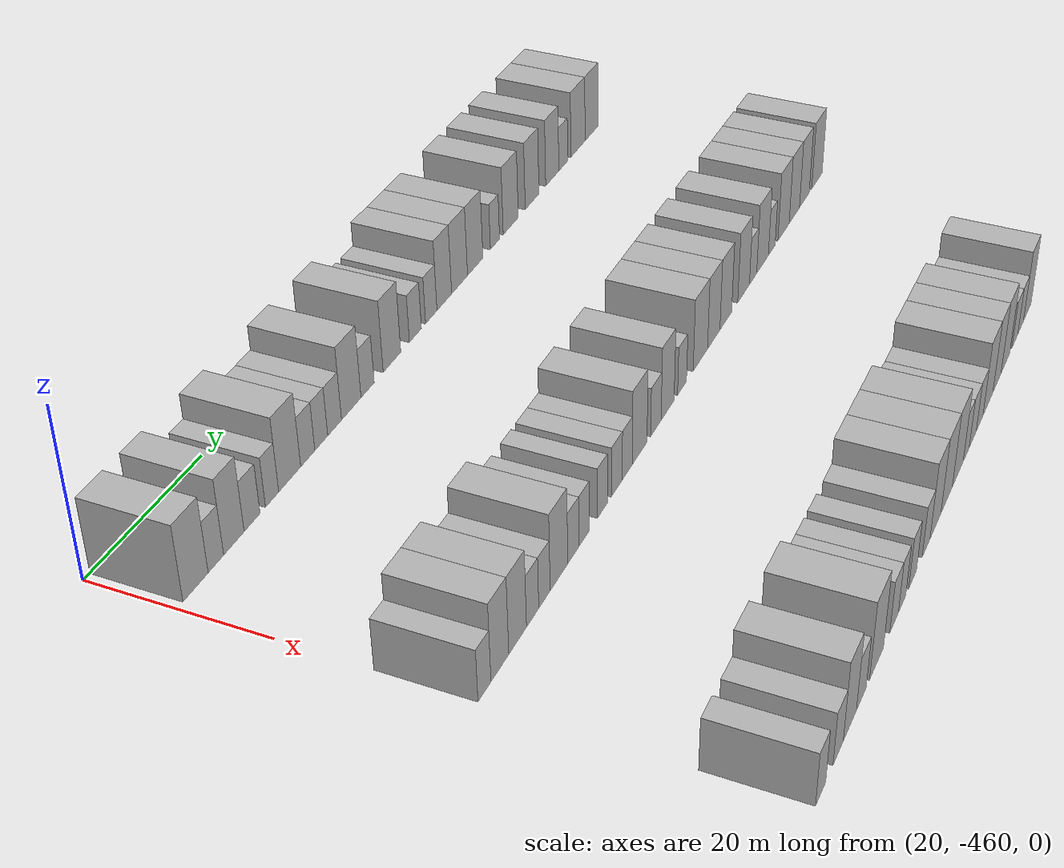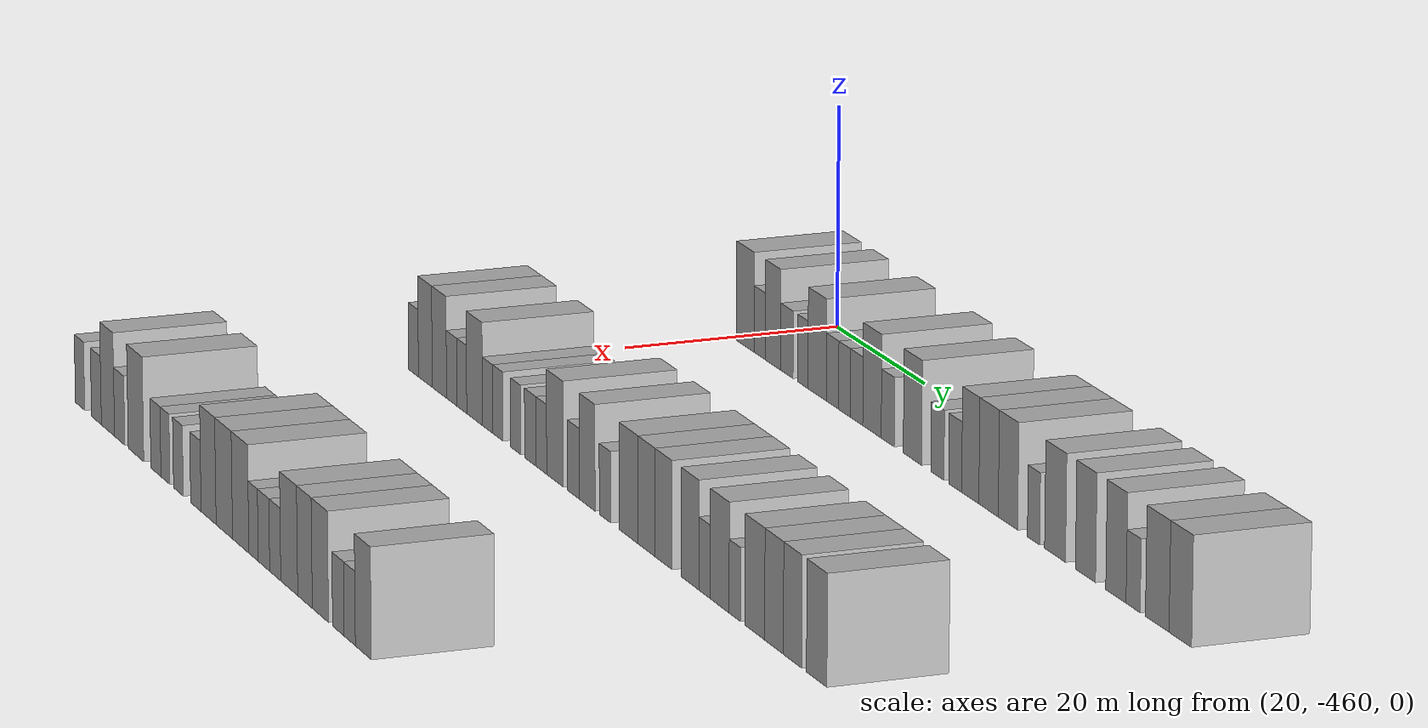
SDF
<sdf version="1.6">
 <world name="default">
  <model name="building_1">
   <static>1</static>
   <pose>25.0000 -456.8783 0 0.000000 0.000000 0.000000</pose>
   <link name="link">
    <pose>0 0 4.50 0 0 0</pose>
    <collision name="collision"><geometry><box><size>10.0000 4.2434 9.0000</size></box></geometry></collision>
    <visual name="visual">
     <cast_shadows>0</cast_shadows>
     <geometry><box><size>10.0000 4.2434 9.0000</size></box></geometry>
     <material>
      <script>
       <uri>model://HANNAS_wall/materials/scripts</uri>
       <uri>model://HANNAS_wall/materials/textures</uri>
       <name>vrc/HANNAS_wall</name>
      </script>
     </material>
    </visual>
   </link>
  </model>
  <model name="building_2">
   <static>1</static>
   <pose>25.0000 -453.4162 0 0.000000 0.000000 0.000000</pose>
   <link name="link">
    <pose>0 0 3.00 0 0 0</pose>
    <collision name="collision"><geometry><box><size>10.0000 2.6807 6.0000</size></box></geometry></collision>
    <visual name="visual">
     <cast_shadows>0</cast_shadows>
     <geometry><box><size>10.0000 2.6807 6.0000</size></box></geometry>
     <material>
      <script>
       <uri>model://HANNAS_wall/materials/scripts</uri>
       <uri>model://HANNAS_wall/materials/textures</uri>
       <name>vrc/HANNAS_wall</name>
      </script>
     </material>
    </visual>
   </link>
  </model>
  <model name="building_3">
   <static>1</static>
   <pose>25.0000 -450.2645 0 0.000000 0.000000 0.000000</pose>
   <link name="link">
    <pose>0 0 4.50 0 0 0</pose>
    <collision name="collision"><geometry><box><size>10.0000 3.6228 9.0000</size></box></geometry></collision>
    <visual name="visual">
     <cast_shadows>0</cast_shadows>
     <geometry><box><size>10.0000 3.6228 9.0000</size></box></geometry>
     <material>
      <script>
       <uri>model://HANNAS_wall/materials/scripts</uri>
       <uri>model://HANNAS_wall/materials/textures</uri>
       <name>vrc/HANNAS_wall</name>
      </script>
     </material>
    </visual>
   </link>
  </model>
  <model name="building_4">
   <static>1</static>
   <pose>25.0000 -446.9967 0 0.000000 0.000000 0.000000</pose>
   <link name="link">
    <pose>0 0 3.00 0 0 0</pose>
    <collision name="collision"><geometry><box><size>10.0000 2.9128 6.0000</size></box></geometry></collision>
    <visual name="visual">
     <cast_shadows>0</cast_shadows>
     <geometry><box><size>10.0000 2.9128 6.0000</size></box></geometry>
     <material>
      <script>
       <uri>model://HANNAS_wall/materials/scripts</uri>
       <uri>model://HANNAS_wall/materials/textures</uri>
       <name>vrc/HANNAS_wall</name>
      </script>
     </material>
    </visual>
   </link>
  </model>
  <model name="building_5">
   <static>1</static>
   <pose>25.0000 -443.2996 0 0.000000 0.000000 0.000000</pose>
   <link name="link">
    <pose>0 0 3.00 0 0 0</pose>
    <collision name="collision"><geometry><box><size>10.0000 2.4815 6.0000</size></box></geometry></collision>
    <visual name="visual">
     <cast_shadows>0</cast_shadows>
     <geometry><box><size>10.0000 2.4815 6.0000</size></box></geometry>
     <material>
      <script>
       <uri>model://HANNAS_wall/materials/scripts</uri>
       <uri>model://HANNAS_wall/materials/textures</uri>
       <name>vrc/HANNAS_wall</name>
      </script>
     </material>
    </visual>
   </link>
  </model>
  <model name="building_6">
   <static>1</static>
   <pose>25.0000 -439.9351 0 0.000000 0.000000 0.000000</pose>
   <link name="link">
    <pose>0 0 4.50 0 0 0</pose>
    <collision name="collision"><geometry><box><size>10.0000 4.2474 9.0000</size></box></geometry></collision>
    <visual name="visual">
     <cast_shadows>0</cast_shadows>
     <geometry><box><size>10.0000 4.2474 9.0000</size></box></geometry>
     <material>
      <script>
       <uri>model://HANNAS_wall/materials/scripts</uri>
       <uri>model://HANNAS_wall/materials/textures</uri>
       <name>vrc/HANNAS_wall</name>
      </script>
     </material>
    </visual>
   </link>
  </model>
  <model name="building_7">
   <static>1</static>
   <pose>25.0000 -436.4118 0 0.000000 0.000000 0.000000</pose>
   <link name="link">
    <pose>0 0 3.00 0 0 0</pose>
    <collision name="collision"><geometry><box><size>10.0000 2.7993 6.0000</size></box></geometry></collision>
    <visual name="visual">
     <cast_shadows>0</cast_shadows>
     <geometry><box><size>10.0000 2.7993 6.0000</size></box></geometry>
     <material>
      <script>
       <uri>model://HANNAS_wall/materials/scripts</uri>
       <uri>model://HANNAS_wall/materials/textures</uri>
       <name>vrc/HANNAS_wall</name>
      </script>
     </material>
    </visual>
   </link>
  </model>
  <model name="building_8">
   <static>1</static>
   <pose>25.0000 -433.7021 0 0.000000 0.000000 0.000000</pose>
   <link name="link">
    <pose>0 0 3.00 0 0 0</pose>
    <collision name="collision"><geometry><box><size>10.0000 2.6202 6.0000</size></box></geometry></collision>
    <visual name="visual">
     <cast_shadows>0</cast_shadows>
     <geometry><box><size>10.0000 2.6202 6.0000</size></box></geometry>
     <material>
      <script>
       <uri>model://HANNAS_wall/materials/scripts</uri>
       <uri>model://HANNAS_wall/materials/textures</uri>
       <name>vrc/HANNAS_wall</name>
      </script>
     </material>
    </visual>
   </link>
  </model>
  <model name="building_9">
   <static>1</static>
   <pose>25.0000 -430.9677 0 0.000000 0.000000 0.000000</pose>
   <link name="link">
    <pose>0 0 3.00 0 0 0</pose>
    <collision name="collision"><geometry><box><size>10.0000 2.8485 6.0000</size></box></geometry></collision>
    <visual name="visual">
     <cast_shadows>0</cast_shadows>
     <geometry><box><size>10.0000 2.8485 6.0000</size></box></geometry>
     <material>
      <script>
       <uri>model://HANNAS_wall/materials/scripts</uri>
       <uri>model://HANNAS_wall/materials/textures</uri>
       <name>vrc/HANNAS_wall</name>
      </script>
     </material>
    </visual>
   </link>
  </model>
  <model name="building_10">
   <static>1</static>
   <pose>25.0000 -427.4785 0 0.000000 0.000000 0.000000</pose>
   <link name="link">
    <pose>0 0 4.50 0 0 0</pose>
    <collision name="collision"><geometry><box><size>10.0000 4.1300 9.0000</size></box></geometry></collision>
    <visual name="visual">
     <cast_shadows>0</cast_shadows>
     <geometry><box><size>10.0000 4.1300 9.0000</size></box></geometry>
     <material>
      <script>
       <uri>model://HANNAS_wall/materials/scripts</uri>
       <uri>model://HANNAS_wall/materials/textures</uri>
       <name>vrc/HANNAS_wall</name>
      </script>
     </material>
    </visual>
   </link>
  </model>
  <model name="building_11">
   <static>1</static>
   <pose>25.0000 -423.9754 0 0.000000 0.000000 0.000000</pose>
   <link name="link">
    <pose>0 0 3.00 0 0 0</pose>
    <collision name="collision"><geometry><box><size>10.0000 2.8760 6.0000</size></box></geometry></collision>
    <visual name="visual">
     <cast_shadows>0</cast_shadows>
     <geometry><box><size>10.0000 2.8760 6.0000</size></box></geometry>
     <material>
      <script>
       <uri>model://HANNAS_wall/materials/scripts</uri>
       <uri>model://HANNAS_wall/materials/textures</uri>
       <name>vrc/HANNAS_wall</name>
      </script>
     </material>
    </visual>
   </link>
  </model>
  <model name="building_12">
   <static>1</static>
   <pose>25.0000 -418.5419 0 0.000000 0.000000 0.000000</pose>
   <link name="link">
    <pose>0 0 4.50 0 0 0</pose>
    <collision name="collision"><geometry><box><size>10.0000 3.9910 9.0000</size></box></geometry></collision>
    <visual name="visual">
     <cast_shadows>0</cast_shadows>
     <geometry><box><size>10.0000 3.9910 9.0000</size></box></geometry>
     <material>
      <script>
       <uri>model://HANNAS_wall/materials/scripts</uri>
       <uri>model://HANNAS_wall/materials/textures</uri>
       <name>vrc/HANNAS_wall</name>
      </script>
     </material>
    </visual>
   </link>
  </model>
  <model name="building_13">
   <static>1</static>
   <pose>25.0000 -413.1320 0 0.000000 0.000000 0.000000</pose>
   <link name="link">
    <pose>0 0 3.00 0 0 0</pose>
    <collision name="collision"><geometry><box><size>10.0000 2.8289 6.0000</size></box></geometry></collision>
    <visual name="visual">
     <cast_shadows>0</cast_shadows>
     <geometry><box><size>10.0000 2.8289 6.0000</size></box></geometry>
     <material>
      <script>
       <uri>model://HANNAS_wall/materials/scripts</uri>
       <uri>model://HANNAS_wall/materials/textures</uri>
       <name>vrc/HANNAS_wall</name>
      </script>
     </material>
    </visual>
   </link>
  </model>
  <model name="building_14">
   <static>1</static>
   <pose>25.0000 -409.3361 0 0.000000 0.000000 0.000000</pose>
   <link name="link">
    <pose>0 0 3.00 0 0 0</pose>
    <collision name="collision"><geometry><box><size>10.0000 2.7627 6.0000</size></box></geometry></collision>
    <visual name="visual">
     <cast_shadows>0</cast_shadows>
     <geometry><box><size>10.0000 2.7627 6.0000</size></box></geometry>
     <material>
      <script>
       <uri>model://HANNAS_wall/materials/scripts</uri>
       <uri>model://HANNAS_wall/materials/textures</uri>
       <name>vrc/HANNAS_wall</name>
      </script>
     </material>
    </visual>
   </link>
  </model>
  <model name="building_15">
   <static>1</static>
   <pose>25.0000 -406.1360 0 0.000000 0.000000 0.000000</pose>
   <link name="link">
    <pose>0 0 4.50 0 0 0</pose>
    <collision name="collision"><geometry><box><size>10.0000 3.6375 9.0000</size></box></geometry></collision>
    <visual name="visual">
     <cast_shadows>0</cast_shadows>
     <geometry><box><size>10.0000 3.6375 9.0000</size></box></geometry>
     <material>
      <script>
       <uri>model://HANNAS_wall/materials/scripts</uri>
       <uri>model://HANNAS_wall/materials/textures</uri>
       <name>vrc/HANNAS_wall</name>
      </script>
     </material>
    </visual>
   </link>
  </model>
  <model name="building_16">
   <static>1</static>
   <pose>25.0000 -402.2906 0 0.000000 0.000000 0.000000</pose>
   <link name="link">
    <pose>0 0 4.50 0 0 0</pose>
    <collision name="collision"><geometry><box><size>10.0000 4.0534 9.0000</size></box></geometry></collision>
    <visual name="visual">
     <cast_shadows>0</cast_shadows>
     <geometry><box><size>10.0000 4.0534 9.0000</size></box></geometry>
     <material>
      <script>
       <uri>model://HANNAS_wall/materials/scripts</uri>
       <uri>model://HANNAS_wall/materials/textures</uri>
       <name>vrc/HANNAS_wall</name>
      </script>
     </material>
    </visual>
   </link>
  </model>
  <model name="building_17">
   <static>1</static>
   <pose>25.0000 -398.2564 0 0.000000 0.000000 0.000000</pose>
   <link name="link">
    <pose>0 0 4.50 0 0 0</pose>
    <collision name="collision"><geometry><box><size>10.0000 4.0150 9.0000</size></box></geometry></collision>
    <visual name="visual">
     <cast_shadows>0</cast_shadows>
     <geometry><box><size>10.0000 4.0150 9.0000</size></box></geometry>
     <material>
      <script>
       <uri>model://HANNAS_wall/materials/scripts</uri>
       <uri>model://HANNAS_wall/materials/textures</uri>
       <name>vrc/HANNAS_wall</name>
      </script>
     </material>
    </visual>
   </link>
  </model>
  <model name="building_18">
   <static>1</static>
   <pose>25.0000 -393.0043 0 0.000000 0.000000 0.000000</pose>
   <link name="link">
    <pose>0 0 3.00 0 0 0</pose>
    <collision name="collision"><geometry><box><size>10.0000 2.4893 6.0000</size></box></geometry></collision>
    <visual name="visual">
     <cast_shadows>0</cast_shadows>
     <geometry><box><size>10.0000 2.4893 6.0000</size></box></geometry>
     <material>
      <script>
       <uri>model://HANNAS_wall/materials/scripts</uri>
       <uri>model://HANNAS_wall/materials/textures</uri>
       <name>vrc/HANNAS_wall</name>
      </script>
     </material>
    </visual>
   </link>
  </model>
  <model name="building_19">
   <static>1</static>
   <pose>25.0000 -388.6606 0 0.000000 0.000000 0.000000</pose>
   <link name="link">
    <pose>0 0 4.50 0 0 0</pose>
    <collision name="collision"><geometry><box><size>10.0000 4.1980 9.0000</size></box></geometry></collision>
    <visual name="visual">
     <cast_shadows>0</cast_shadows>
     <geometry><box><size>10.0000 4.1980 9.0000</size></box></geometry>
     <material>
      <script>
       <uri>model://HANNAS_wall/materials/scripts</uri>
       <uri>model://HANNAS_wall/materials/textures</uri>
       <name>vrc/HANNAS_wall</name>
      </script>
     </material>
    </visual>
   </link>
  </model>
  <model name="building_20">
   <static>1</static>
   <pose>25.0000 -382.5770 0 0.000000 0.000000 0.000000</pose>
   <link name="link">
    <pose>0 0 4.50 0 0 0</pose>
    <collision name="collision"><geometry><box><size>10.0000 3.9693 9.0000</size></box></geometry></collision>
    <visual name="visual">
     <cast_shadows>0</cast_shadows>
     <geometry><box><size>10.0000 3.9693 9.0000</size></box></geometry>
     <material>
      <script>
       <uri>model://HANNAS_wall/materials/scripts</uri>
       <uri>model://HANNAS_wall/materials/textures</uri>
       <name>vrc/HANNAS_wall</name>
      </script>
     </material>
    </visual>
   </link>
  </model>
  <model name="building_21">
   <static>1</static>
   <pose>25.0000 -376.6171 0 0.000000 0.000000 0.000000</pose>
   <link name="link">
    <pose>0 0 4.50 0 0 0</pose>
    <collision name="collision"><geometry><box><size>10.0000 3.9505 9.0000</size></box></geometry></collision>
    <visual name="visual">
     <cast_shadows>0</cast_shadows>
     <geometry><box><size>10.0000 3.9505 9.0000</size></box></geometry>
     <material>
      <script>
       <uri>model://HANNAS_wall/materials/scripts</uri>
       <uri>model://HANNAS_wall/materials/textures</uri>
       <name>vrc/HANNAS_wall</name>
      </script>
     </material>
    </visual>
   </link>
  </model>
  <model name="building_22">
   <static>1</static>
   <pose>25.0000 -373.2767 0 0.000000 0.000000 0.000000</pose>
   <link name="link">
    <pose>0 0 3.00 0 0 0</pose>
    <collision name="collision"><geometry><box><size>10.0000 2.7302 6.0000</size></box></geometry></collision>
    <visual name="visual">
     <cast_shadows>0</cast_shadows>
     <geometry><box><size>10.0000 2.7302 6.0000</size></box></geometry>
     <material>
      <script>
       <uri>model://HANNAS_wall/materials/scripts</uri>
       <uri>model://HANNAS_wall/materials/textures</uri>
       <name>vrc/HANNAS_wall</name>
      </script>
     </material>
    </visual>
   </link>
  </model>
  <model name="building_23">
   <static>1</static>
   <pose>25.0000 -368.6682 0 0.000000 0.000000 0.000000</pose>
   <link name="link">
    <pose>0 0 4.50 0 0 0</pose>
    <collision name="collision"><geometry><box><size>10.0000 4.4869 9.0000</size></box></geometry></collision>
    <visual name="visual">
     <cast_shadows>0</cast_shadows>
     <geometry><box><size>10.0000 4.4869 9.0000</size></box></geometry>
     <material>
      <script>
       <uri>model://HANNAS_wall/materials/scripts</uri>
       <uri>model://HANNAS_wall/materials/textures</uri>
       <name>vrc/HANNAS_wall</name>
      </script>
     </material>
    </visual>
   </link>
  </model>
  <model name="building_24">
   <static>1</static>
   <pose>25.0000 -364.3045 0 0.000000 0.000000 0.000000</pose>
   <link name="link">
    <pose>0 0 4.50 0 0 0</pose>
    <collision name="collision"><geometry><box><size>10.0000 4.2405 9.0000</size></box></geometry></collision>
    <visual name="visual">
     <cast_shadows>0</cast_shadows>
     <geometry><box><size>10.0000 4.2405 9.0000</size></box></geometry>
     <material>
      <script>
       <uri>model://HANNAS_wall/materials/scripts</uri>
       <uri>model://HANNAS_wall/materials/textures</uri>
       <name>vrc/HANNAS_wall</name>
      </script>
     </material>
    </visual>
   </link>
  </model>
  <model name="building_215">
   <static>1</static>
   <pose>55.0000 -458.7110 0 0.000000 0.000000 0.000000</pose>
   <link name="link">
    <pose>0 0 3.00 0 0 0</pose>
    <collision name="collision"><geometry><box><size>10.0000 2.5780 6.0000</size></box></geometry></collision>
    <visual name="visual">
     <cast_shadows>0</cast_shadows>
     <geometry><box><size>10.0000 2.5780 6.0000</size></box></geometry>
     <material>
      <script>
       <uri>model://HANNAS_wall/materials/scripts</uri>
       <uri>model://HANNAS_wall/materials/textures</uri>
       <name>vrc/HANNAS_wall</name>
      </script>
     </material>
    </visual>
   </link>
  </model>
  <model name="building_216">
   <static>1</static>
   <pose>55.0000 -455.6035 0 0.000000 0.000000 0.000000</pose>
   <link name="link">
    <pose>0 0 4.50 0 0 0</pose>
    <collision name="collision"><geometry><box><size>10.0000 3.6370 9.0000</size></box></geometry></collision>
    <visual name="visual">
     <cast_shadows>0</cast_shadows>
     <geometry><box><size>10.0000 3.6370 9.0000</size></box></geometry>
     <material>
      <script>
       <uri>model://HANNAS_wall/materials/scripts</uri>
       <uri>model://HANNAS_wall/materials/textures</uri>
       <name>vrc/HANNAS_wall</name>
      </script>
     </material>
    </visual>
   </link>
  </model>
  <model name="building_217">
   <static>1</static>
   <pose>55.0000 -451.9190 0 0.000000 0.000000 0.000000</pose>
   <link name="link">
    <pose>0 0 4.50 0 0 0</pose>
    <collision name="collision"><geometry><box><size>10.0000 3.7319 9.0000</size></box></geometry></collision>
    <visual name="visual">
     <cast_shadows>0</cast_shadows>
     <geometry><box><size>10.0000 3.7319 9.0000</size></box></geometry>
     <material>
      <script>
       <uri>model://HANNAS_wall/materials/scripts</uri>
       <uri>model://HANNAS_wall/materials/textures</uri>
       <name>vrc/HANNAS_wall</name>
      </script>
     </material>
    </visual>
   </link>
  </model>
  <model name="building_218">
   <static>1</static>
   <pose>55.0000 -448.7232 0 0.000000 0.000000 0.000000</pose>
   <link name="link">
    <pose>0 0 3.00 0 0 0</pose>
    <collision name="collision"><geometry><box><size>10.0000 2.6597 6.0000</size></box></geometry></collision>
    <visual name="visual">
     <cast_shadows>0</cast_shadows>
     <geometry><box><size>10.0000 2.6597 6.0000</size></box></geometry>
     <material>
      <script>
       <uri>model://HANNAS_wall/materials/scripts</uri>
       <uri>model://HANNAS_wall/materials/textures</uri>
       <name>vrc/HANNAS_wall</name>
      </script>
     </material>
    </visual>
   </link>
  </model>
  <model name="building_219">
   <static>1</static>
   <pose>55.0000 -446.1282 0 0.000000 0.000000 0.000000</pose>
   <link name="link">
    <pose>0 0 3.00 0 0 0</pose>
    <collision name="collision"><geometry><box><size>10.0000 2.5302 6.0000</size></box></geometry></collision>
    <visual name="visual">
     <cast_shadows>0</cast_shadows>
     <geometry><box><size>10.0000 2.5302 6.0000</size></box></geometry>
     <material>
      <script>
       <uri>model://HANNAS_wall/materials/scripts</uri>
       <uri>model://HANNAS_wall/materials/textures</uri>
       <name>vrc/HANNAS_wall</name>
      </script>
     </material>
    </visual>
   </link>
  </model>
  <model name="building_220">
   <static>1</static>
   <pose>55.0000 -442.8628 0 0.000000 0.000000 0.000000</pose>
   <link name="link">
    <pose>0 0 4.50 0 0 0</pose>
    <collision name="collision"><geometry><box><size>10.0000 4.0006 9.0000</size></box></geometry></collision>
    <visual name="visual">
     <cast_shadows>0</cast_shadows>
     <geometry><box><size>10.0000 4.0006 9.0000</size></box></geometry>
     <material>
      <script>
       <uri>model://HANNAS_wall/materials/scripts</uri>
       <uri>model://HANNAS_wall/materials/textures</uri>
       <name>vrc/HANNAS_wall</name>
      </script>
     </material>
    </visual>
   </link>
  </model>
  <model name="building_221">
   <static>1</static>
   <pose>55.0000 -439.5380 0 0.000000 0.000000 0.000000</pose>
   <link name="link">
    <pose>0 0 3.00 0 0 0</pose>
    <collision name="collision"><geometry><box><size>10.0000 2.6491 6.0000</size></box></geometry></collision>
    <visual name="visual">
     <cast_shadows>0</cast_shadows>
     <geometry><box><size>10.0000 2.6491 6.0000</size></box></geometry>
     <material>
      <script>
       <uri>model://HANNAS_wall/materials/scripts</uri>
       <uri>model://HANNAS_wall/materials/textures</uri>
       <name>vrc/HANNAS_wall</name>
      </script>
     </material>
    </visual>
   </link>
  </model>
  <model name="building_222">
   <static>1</static>
   <pose>55.0000 -436.9843 0 0.000000 0.000000 0.000000</pose>
   <link name="link">
    <pose>0 0 3.00 0 0 0</pose>
    <collision name="collision"><geometry><box><size>10.0000 2.4582 6.0000</size></box></geometry></collision>
    <visual name="visual">
     <cast_shadows>0</cast_shadows>
     <geometry><box><size>10.0000 2.4582 6.0000</size></box></geometry>
     <material>
      <script>
       <uri>model://HANNAS_wall/materials/scripts</uri>
       <uri>model://HANNAS_wall/materials/textures</uri>
       <name>vrc/HANNAS_wall</name>
      </script>
     </material>
    </visual>
   </link>
  </model>
  <model name="building_223">
   <static>1</static>
   <pose>55.0000 -432.5387 0 0.000000 0.000000 0.000000</pose>
   <link name="link">
    <pose>0 0 3.00 0 0 0</pose>
    <collision name="collision"><geometry><box><size>10.0000 2.4329 6.0000</size></box></geometry></collision>
    <visual name="visual">
     <cast_shadows>0</cast_shadows>
     <geometry><box><size>10.0000 2.4329 6.0000</size></box></geometry>
     <material>
      <script>
       <uri>model://HANNAS_wall/materials/scripts</uri>
       <uri>model://HANNAS_wall/materials/textures</uri>
       <name>vrc/HANNAS_wall</name>
      </script>
     </material>
    </visual>
   </link>
  </model>
  <model name="building_224">
   <static>1</static>
   <pose>55.0000 -428.9319 0 0.000000 0.000000 0.000000</pose>
   <link name="link">
    <pose>0 0 3.00 0 0 0</pose>
    <collision name="collision"><geometry><box><size>10.0000 2.7806 6.0000</size></box></geometry></collision>
    <visual name="visual">
     <cast_shadows>0</cast_shadows>
     <geometry><box><size>10.0000 2.7806 6.0000</size></box></geometry>
     <material>
      <script>
       <uri>model://HANNAS_wall/materials/scripts</uri>
       <uri>model://HANNAS_wall/materials/textures</uri>
       <name>vrc/HANNAS_wall</name>
      </script>
     </material>
    </visual>
   </link>
  </model>
  <model name="building_225">
   <static>1</static>
   <pose>55.0000 -426.2436 0 0.000000 0.000000 0.000000</pose>
   <link name="link">
    <pose>0 0 3.00 0 0 0</pose>
    <collision name="collision"><geometry><box><size>10.0000 2.5960 6.0000</size></box></geometry></collision>
    <visual name="visual">
     <cast_shadows>0</cast_shadows>
     <geometry><box><size>10.0000 2.5960 6.0000</size></box></geometry>
     <material>
      <script>
       <uri>model://HANNAS_wall/materials/scripts</uri>
       <uri>model://HANNAS_wall/materials/textures</uri>
       <name>vrc/HANNAS_wall</name>
      </script>
     </material>
    </visual>
   </link>
  </model>
  <model name="building_226">
   <static>1</static>
   <pose>55.0000 -422.9632 0 0.000000 0.000000 0.000000</pose>
   <link name="link">
    <pose>0 0 4.50 0 0 0</pose>
    <collision name="collision"><geometry><box><size>10.0000 3.9649 9.0000</size></box></geometry></collision>
    <visual name="visual">
     <cast_shadows>0</cast_shadows>
     <geometry><box><size>10.0000 3.9649 9.0000</size></box></geometry>
     <material>
      <script>
       <uri>model://HANNAS_wall/materials/scripts</uri>
       <uri>model://HANNAS_wall/materials/textures</uri>
       <name>vrc/HANNAS_wall</name>
      </script>
     </material>
    </visual>
   </link>
  </model>
  <model name="building_227">
   <static>1</static>
   <pose>55.0000 -418.5348 0 0.000000 0.000000 0.000000</pose>
   <link name="link">
    <pose>0 0 3.00 0 0 0</pose>
    <collision name="collision"><geometry><box><size>10.0000 2.8920 6.0000</size></box></geometry></collision>
    <visual name="visual">
     <cast_shadows>0</cast_shadows>
     <geometry><box><size>10.0000 2.8920 6.0000</size></box></geometry>
     <material>
      <script>
       <uri>model://HANNAS_wall/materials/scripts</uri>
       <uri>model://HANNAS_wall/materials/textures</uri>
       <name>vrc/HANNAS_wall</name>
      </script>
     </material>
    </visual>
   </link>
  </model>
  <model name="building_228">
   <static>1</static>
   <pose>55.0000 -415.2346 0 0.000000 0.000000 0.000000</pose>
   <link name="link">
    <pose>0 0 4.50 0 0 0</pose>
    <collision name="collision"><geometry><box><size>10.0000 3.7083 9.0000</size></box></geometry></collision>
    <visual name="visual">
     <cast_shadows>0</cast_shadows>
     <geometry><box><size>10.0000 3.7083 9.0000</size></box></geometry>
     <material>
      <script>
       <uri>model://HANNAS_wall/materials/scripts</uri>
       <uri>model://HANNAS_wall/materials/textures</uri>
       <name>vrc/HANNAS_wall</name>
      </script>
     </material>
    </visual>
   </link>
  </model>
  <model name="building_229">
   <static>1</static>
   <pose>55.0000 -411.0763 0 0.000000 0.000000 0.000000</pose>
   <link name="link">
    <pose>0 0 3.00 0 0 0</pose>
    <collision name="collision"><geometry><box><size>10.0000 2.6084 6.0000</size></box></geometry></collision>
    <visual name="visual">
     <cast_shadows>0</cast_shadows>
     <geometry><box><size>10.0000 2.6084 6.0000</size></box></geometry>
     <material>
      <script>
       <uri>model://HANNAS_wall/materials/scripts</uri>
       <uri>model://HANNAS_wall/materials/textures</uri>
       <name>vrc/HANNAS_wall</name>
      </script>
     </material>
    </visual>
   </link>
  </model>
  <model name="building_230">
   <static>1</static>
   <pose>55.0000 -405.5846 0 0.000000 0.000000 0.000000</pose>
   <link name="link">
    <pose>0 0 4.50 0 0 0</pose>
    <collision name="collision"><geometry><box><size>10.0000 4.3749 9.0000</size></box></geometry></collision>
    <visual name="visual">
     <cast_shadows>0</cast_shadows>
     <geometry><box><size>10.0000 4.3749 9.0000</size></box></geometry>
     <material>
      <script>
       <uri>model://HANNAS_wall/materials/scripts</uri>
       <uri>model://HANNAS_wall/materials/textures</uri>
       <name>vrc/HANNAS_wall</name>
      </script>
     </material>
    </visual>
   </link>
  </model>
  <model name="building_231">
   <static>1</static>
   <pose>55.0000 -401.4503 0 0.000000 0.000000 0.000000</pose>
   <link name="link">
    <pose>0 0 4.50 0 0 0</pose>
    <collision name="collision"><geometry><box><size>10.0000 3.8938 9.0000</size></box></geometry></collision>
    <visual name="visual">
     <cast_shadows>0</cast_shadows>
     <geometry><box><size>10.0000 3.8938 9.0000</size></box></geometry>
     <material>
      <script>
       <uri>model://HANNAS_wall/materials/scripts</uri>
       <uri>model://HANNAS_wall/materials/textures</uri>
       <name>vrc/HANNAS_wall</name>
      </script>
     </material>
    </visual>
   </link>
  </model>
  <model name="building_232">
   <static>1</static>
   <pose>55.0000 -397.6025 0 0.000000 0.000000 0.000000</pose>
   <link name="link">
    <pose>0 0 4.50 0 0 0</pose>
    <collision name="collision"><geometry><box><size>10.0000 3.8018 9.0000</size></box></geometry></collision>
    <visual name="visual">
     <cast_shadows>0</cast_shadows>
     <geometry><box><size>10.0000 3.8018 9.0000</size></box></geometry>
     <material>
      <script>
       <uri>model://HANNAS_wall/materials/scripts</uri>
       <uri>model://HANNAS_wall/materials/textures</uri>
       <name>vrc/HANNAS_wall</name>
      </script>
     </material>
    </visual>
   </link>
  </model>
  <model name="building_233">
   <static>1</static>
   <pose>55.0000 -391.7390 0 0.000000 0.000000 0.000000</pose>
   <link name="link">
    <pose>0 0 4.50 0 0 0</pose>
    <collision name="collision"><geometry><box><size>10.0000 3.9252 9.0000</size></box></geometry></collision>
    <visual name="visual">
     <cast_shadows>0</cast_shadows>
     <geometry><box><size>10.0000 3.9252 9.0000</size></box></geometry>
     <material>
      <script>
       <uri>model://HANNAS_wall/materials/scripts</uri>
       <uri>model://HANNAS_wall/materials/textures</uri>
       <name>vrc/HANNAS_wall</name>
      </script>
     </material>
    </visual>
   </link>
  </model>
  <model name="building_234">
   <static>1</static>
   <pose>55.0000 -388.5229 0 0.000000 0.000000 0.000000</pose>
   <link name="link">
    <pose>0 0 3.00 0 0 0</pose>
    <collision name="collision"><geometry><box><size>10.0000 2.5069 6.0000</size></box></geometry></collision>
    <visual name="visual">
     <cast_shadows>0</cast_shadows>
     <geometry><box><size>10.0000 2.5069 6.0000</size></box></geometry>
     <material>
      <script>
       <uri>model://HANNAS_wall/materials/scripts</uri>
       <uri>model://HANNAS_wall/materials/textures</uri>
       <name>vrc/HANNAS_wall</name>
      </script>
     </material>
    </visual>
   </link>
  </model>
  <model name="building_235">
   <static>1</static>
   <pose>55.0000 -385.2077 0 0.000000 0.000000 0.000000</pose>
   <link name="link">
    <pose>0 0 4.50 0 0 0</pose>
    <collision name="collision"><geometry><box><size>10.0000 4.1236 9.0000</size></box></geometry></collision>
    <visual name="visual">
     <cast_shadows>0</cast_shadows>
     <geometry><box><size>10.0000 4.1236 9.0000</size></box></geometry>
     <material>
      <script>
       <uri>model://HANNAS_wall/materials/scripts</uri>
       <uri>model://HANNAS_wall/materials/textures</uri>
       <name>vrc/HANNAS_wall</name>
      </script>
     </material>
    </visual>
   </link>
  </model>
  <model name="building_236">
   <static>1</static>
   <pose>55.0000 -381.9351 0 0.000000 0.000000 0.000000</pose>
   <link name="link">
    <pose>0 0 3.00 0 0 0</pose>
    <collision name="collision"><geometry><box><size>10.0000 2.4216 6.0000</size></box></geometry></collision>
    <visual name="visual">
     <cast_shadows>0</cast_shadows>
     <geometry><box><size>10.0000 2.4216 6.0000</size></box></geometry>
     <material>
      <script>
       <uri>model://HANNAS_wall/materials/scripts</uri>
       <uri>model://HANNAS_wall/materials/textures</uri>
       <name>vrc/HANNAS_wall</name>
      </script>
     </material>
    </visual>
   </link>
  </model>
  <model name="building_237">
   <static>1</static>
   <pose>55.0000 -377.6320 0 0.000000 0.000000 0.000000</pose>
   <link name="link">
    <pose>0 0 4.50 0 0 0</pose>
    <collision name="collision"><geometry><box><size>10.0000 4.1847 9.0000</size></box></geometry></collision>
    <visual name="visual">
     <cast_shadows>0</cast_shadows>
     <geometry><box><size>10.0000 4.1847 9.0000</size></box></geometry>
     <material>
      <script>
       <uri>model://HANNAS_wall/materials/scripts</uri>
       <uri>model://HANNAS_wall/materials/textures</uri>
       <name>vrc/HANNAS_wall</name>
      </script>
     </material>
    </visual>
   </link>
  </model>
  <model name="building_238">
   <static>1</static>
   <pose>55.0000 -373.5773 0 0.000000 0.000000 0.000000</pose>
   <link name="link">
    <pose>0 0 4.50 0 0 0</pose>
    <collision name="collision"><geometry><box><size>10.0000 3.9247 9.0000</size></box></geometry></collision>
    <visual name="visual">
     <cast_shadows>0</cast_shadows>
     <geometry><box><size>10.0000 3.9247 9.0000</size></box></geometry>
     <material>
      <script>
       <uri>model://HANNAS_wall/materials/scripts</uri>
       <uri>model://HANNAS_wall/materials/textures</uri>
       <name>vrc/HANNAS_wall</name>
      </script>
     </material>
    </visual>
   </link>
  </model>
  <model name="building_239">
   <static>1</static>
   <pose>55.0000 -369.7118 0 0.000000 0.000000 0.000000</pose>
   <link name="link">
    <pose>0 0 4.50 0 0 0</pose>
    <collision name="collision"><geometry><box><size>10.0000 3.8063 9.0000</size></box></geometry></collision>
    <visual name="visual">
     <cast_shadows>0</cast_shadows>
     <geometry><box><size>10.0000 3.8063 9.0000</size></box></geometry>
     <material>
      <script>
       <uri>model://HANNAS_wall/materials/scripts</uri>
       <uri>model://HANNAS_wall/materials/textures</uri>
       <name>vrc/HANNAS_wall</name>
      </script>
     </material>
    </visual>
   </link>
  </model>
  <model name="building_240">
   <static>1</static>
   <pose>55.0000 -364.7172 0 0.000000 0.000000 0.000000</pose>
   <link name="link">
    <pose>0 0 4.50 0 0 0</pose>
    <collision name="collision"><geometry><box><size>10.0000 4.1829 9.0000</size></box></geometry></collision>
    <visual name="visual">
     <cast_shadows>0</cast_shadows>
     <geometry><box><size>10.0000 4.1829 9.0000</size></box></geometry>
     <material>
      <script>
       <uri>model://HANNAS_wall/materials/scripts</uri>
       <uri>model://HANNAS_wall/materials/textures</uri>
       <name>vrc/HANNAS_wall</name>
      </script>
     </material>
    </visual>
   </link>
  </model>
  <model name="building_454">
   <static>1</static>
   <pose>85.0000 -458.6389 0 0.000000 0.000000 0.000000</pose>
   <link name="link">
    <pose>0 0 3.00 0 0 0</pose>
    <collision name="collision"><geometry><box><size>10.0000 2.7222 6.0000</size></box></geometry></collision>
    <visual name="visual">
     <cast_shadows>0</cast_shadows>
     <geometry><box><size>10.0000 2.7222 6.0000</size></box></geometry>
     <material>
      <script>
       <uri>model://HANNAS_wall/materials/scripts</uri>
       <uri>model://HANNAS_wall/materials/textures</uri>
       <name>vrc/HANNAS_wall</name>
      </script>
     </material>
    </visual>
   </link>
  </model>
  <model name="building_455">
   <static>1</static>
   <pose>85.0000 -453.8417 0 0.000000 0.000000 0.000000</pose>
   <link name="link">
    <pose>0 0 3.00 0 0 0</pose>
    <collision name="collision"><geometry><box><size>10.0000 2.8721 6.0000</size></box></geometry></collision>
    <visual name="visual">
     <cast_shadows>0</cast_shadows>
     <geometry><box><size>10.0000 2.8721 6.0000</size></box></geometry>
     <material>
      <script>
       <uri>model://HANNAS_wall/materials/scripts</uri>
       <uri>model://HANNAS_wall/materials/textures</uri>
       <name>vrc/HANNAS_wall</name>
      </script>
     </material>
    </visual>
   </link>
  </model>
  <model name="building_456">
   <static>1</static>
   <pose>85.0000 -450.5056 0 0.000000 0.000000 0.000000</pose>
   <link name="link">
    <pose>0 0 4.50 0 0 0</pose>
    <collision name="collision"><geometry><box><size>10.0000 3.8002 9.0000</size></box></geometry></collision>
    <visual name="visual">
     <cast_shadows>0</cast_shadows>
     <geometry><box><size>10.0000 3.8002 9.0000</size></box></geometry>
     <material>
      <script>
       <uri>model://HANNAS_wall/materials/scripts</uri>
       <uri>model://HANNAS_wall/materials/textures</uri>
       <name>vrc/HANNAS_wall</name>
      </script>
     </material>
    </visual>
   </link>
  </model>
  <model name="building_457">
   <static>1</static>
   <pose>85.0000 -447.1432 0 0.000000 0.000000 0.000000</pose>
   <link name="link">
    <pose>0 0 3.00 0 0 0</pose>
    <collision name="collision"><geometry><box><size>10.0000 2.9245 6.0000</size></box></geometry></collision>
    <visual name="visual">
     <cast_shadows>0</cast_shadows>
     <geometry><box><size>10.0000 2.9245 6.0000</size></box></geometry>
     <material>
      <script>
       <uri>model://HANNAS_wall/materials/scripts</uri>
       <uri>model://HANNAS_wall/materials/textures</uri>
       <name>vrc/HANNAS_wall</name>
      </script>
     </material>
    </visual>
   </link>
  </model>
  <model name="building_458">
   <static>1</static>
   <pose>85.0000 -442.4979 0 0.000000 0.000000 0.000000</pose>
   <link name="link">
    <pose>0 0 4.50 0 0 0</pose>
    <collision name="collision"><geometry><box><size>10.0000 4.3661 9.0000</size></box></geometry></collision>
    <visual name="visual">
     <cast_shadows>0</cast_shadows>
     <geometry><box><size>10.0000 4.3661 9.0000</size></box></geometry>
     <material>
      <script>
       <uri>model://HANNAS_wall/materials/scripts</uri>
       <uri>model://HANNAS_wall/materials/textures</uri>
       <name>vrc/HANNAS_wall</name>
      </script>
     </material>
    </visual>
   </link>
  </model>
  <model name="building_459">
   <static>1</static>
   <pose>85.0000 -436.9100 0 0.000000 0.000000 0.000000</pose>
   <link name="link">
    <pose>0 0 3.00 0 0 0</pose>
    <collision name="collision"><geometry><box><size>10.0000 2.8098 6.0000</size></box></geometry></collision>
    <visual name="visual">
     <cast_shadows>0</cast_shadows>
     <geometry><box><size>10.0000 2.8098 6.0000</size></box></geometry>
     <material>
      <script>
       <uri>model://HANNAS_wall/materials/scripts</uri>
       <uri>model://HANNAS_wall/materials/textures</uri>
       <name>vrc/HANNAS_wall</name>
      </script>
     </material>
    </visual>
   </link>
  </model>
  <model name="building_460">
   <static>1</static>
   <pose>85.0000 -434.2709 0 0.000000 0.000000 0.000000</pose>
   <link name="link">
    <pose>0 0 3.00 0 0 0</pose>
    <collision name="collision"><geometry><box><size>10.0000 2.4684 6.0000</size></box></geometry></collision>
    <visual name="visual">
     <cast_shadows>0</cast_shadows>
     <geometry><box><size>10.0000 2.4684 6.0000</size></box></geometry>
     <material>
      <script>
       <uri>model://HANNAS_wall/materials/scripts</uri>
       <uri>model://HANNAS_wall/materials/textures</uri>
       <name>vrc/HANNAS_wall</name>
      </script>
     </material>
    </visual>
   </link>
  </model>
  <model name="building_461">
   <static>1</static>
   <pose>85.0000 -430.7003 0 0.000000 0.000000 0.000000</pose>
   <link name="link">
    <pose>0 0 3.00 0 0 0</pose>
    <collision name="collision"><geometry><box><size>10.0000 2.6728 6.0000</size></box></geometry></collision>
    <visual name="visual">
     <cast_shadows>0</cast_shadows>
     <geometry><box><size>10.0000 2.6728 6.0000</size></box></geometry>
     <material>
      <script>
       <uri>model://HANNAS_wall/materials/scripts</uri>
       <uri>model://HANNAS_wall/materials/textures</uri>
       <name>vrc/HANNAS_wall</name>
      </script>
     </material>
    </visual>
   </link>
  </model>
  <model name="building_462">
   <static>1</static>
   <pose>85.0000 -425.9517 0 0.000000 0.000000 0.000000</pose>
   <link name="link">
    <pose>0 0 3.00 0 0 0</pose>
    <collision name="collision"><geometry><box><size>10.0000 2.8244 6.0000</size></box></geometry></collision>
    <visual name="visual">
     <cast_shadows>0</cast_shadows>
     <geometry><box><size>10.0000 2.8244 6.0000</size></box></geometry>
     <material>
      <script>
       <uri>model://HANNAS_wall/materials/scripts</uri>
       <uri>model://HANNAS_wall/materials/textures</uri>
       <name>vrc/HANNAS_wall</name>
      </script>
     </material>
    </visual>
   </link>
  </model>
  <model name="building_463">
   <static>1</static>
   <pose>85.0000 -422.5340 0 0.000000 0.000000 0.000000</pose>
   <link name="link">
    <pose>0 0 4.50 0 0 0</pose>
    <collision name="collision"><geometry><box><size>10.0000 4.0110 9.0000</size></box></geometry></collision>
    <visual name="visual">
     <cast_shadows>0</cast_shadows>
     <geometry><box><size>10.0000 4.0110 9.0000</size></box></geometry>
     <material>
      <script>
       <uri>model://HANNAS_wall/materials/scripts</uri>
       <uri>model://HANNAS_wall/materials/textures</uri>
       <name>vrc/HANNAS_wall</name>
      </script>
     </material>
    </visual>
   </link>
  </model>
  <model name="building_464">
   <static>1</static>
   <pose>85.0000 -418.3503 0 0.000000 0.000000 0.000000</pose>
   <link name="link">
    <pose>0 0 4.50 0 0 0</pose>
    <collision name="collision"><geometry><box><size>10.0000 4.3563 9.0000</size></box></geometry></collision>
    <visual name="visual">
     <cast_shadows>0</cast_shadows>
     <geometry><box><size>10.0000 4.3563 9.0000</size></box></geometry>
     <material>
      <script>
       <uri>model://HANNAS_wall/materials/scripts</uri>
       <uri>model://HANNAS_wall/materials/textures</uri>
       <name>vrc/HANNAS_wall</name>
      </script>
     </material>
    </visual>
   </link>
  </model>
  <model name="building_465">
   <static>1</static>
   <pose>85.0000 -414.0403 0 0.000000 0.000000 0.000000</pose>
   <link name="link">
    <pose>0 0 4.50 0 0 0</pose>
    <collision name="collision"><geometry><box><size>10.0000 4.2637 9.0000</size></box></geometry></collision>
    <visual name="visual">
     <cast_shadows>0</cast_shadows>
     <geometry><box><size>10.0000 4.2637 9.0000</size></box></geometry>
     <material>
      <script>
       <uri>model://HANNAS_wall/materials/scripts</uri>
       <uri>model://HANNAS_wall/materials/textures</uri>
       <name>vrc/HANNAS_wall</name>
      </script>
     </material>
    </visual>
   </link>
  </model>
  <model name="building_466">
   <static>1</static>
   <pose>85.0000 -410.6931 0 0.000000 0.000000 0.000000</pose>
   <link name="link">
    <pose>0 0 3.00 0 0 0</pose>
    <collision name="collision"><geometry><box><size>10.0000 2.4306 6.0000</size></box></geometry></collision>
    <visual name="visual">
     <cast_shadows>0</cast_shadows>
     <geometry><box><size>10.0000 2.4306 6.0000</size></box></geometry>
     <material>
      <script>
       <uri>model://HANNAS_wall/materials/scripts</uri>
       <uri>model://HANNAS_wall/materials/textures</uri>
       <name>vrc/HANNAS_wall</name>
      </script>
     </material>
    </visual>
   </link>
  </model>
  <model name="building_467">
   <static>1</static>
   <pose>85.0000 -408.0070 0 0.000000 0.000000 0.000000</pose>
   <link name="link">
    <pose>0 0 3.00 0 0 0</pose>
    <collision name="collision"><geometry><box><size>10.0000 2.9417 6.0000</size></box></geometry></collision>
    <visual name="visual">
     <cast_shadows>0</cast_shadows>
     <geometry><box><size>10.0000 2.9417 6.0000</size></box></geometry>
     <material>
      <script>
       <uri>model://HANNAS_wall/materials/scripts</uri>
       <uri>model://HANNAS_wall/materials/textures</uri>
       <name>vrc/HANNAS_wall</name>
      </script>
     </material>
    </visual>
   </link>
  </model>
  <model name="building_468">
   <static>1</static>
   <pose>85.0000 -405.1223 0 0.000000 0.000000 0.000000</pose>
   <link name="link">
    <pose>0 0 3.00 0 0 0</pose>
    <collision name="collision"><geometry><box><size>10.0000 2.8276 6.0000</size></box></geometry></collision>
    <visual name="visual">
     <cast_shadows>0</cast_shadows>
     <geometry><box><size>10.0000 2.8276 6.0000</size></box></geometry>
     <material>
      <script>
       <uri>model://HANNAS_wall/materials/scripts</uri>
       <uri>model://HANNAS_wall/materials/textures</uri>
       <name>vrc/HANNAS_wall</name>
      </script>
     </material>
    </visual>
   </link>
  </model>
  <model name="building_469">
   <static>1</static>
   <pose>85.0000 -401.5679 0 0.000000 0.000000 0.000000</pose>
   <link name="link">
    <pose>0 0 4.50 0 0 0</pose>
    <collision name="collision"><geometry><box><size>10.0000 4.2812 9.0000</size></box></geometry></collision>
    <visual name="visual">
     <cast_shadows>0</cast_shadows>
     <geometry><box><size>10.0000 4.2812 9.0000</size></box></geometry>
     <material>
      <script>
       <uri>model://HANNAS_wall/materials/scripts</uri>
       <uri>model://HANNAS_wall/materials/textures</uri>
       <name>vrc/HANNAS_wall</name>
      </script>
     </material>
    </visual>
   </link>
  </model>
  <model name="building_470">
   <static>1</static>
   <pose>85.0000 -397.6039 0 0.000000 0.000000 0.000000</pose>
   <link name="link">
    <pose>0 0 4.50 0 0 0</pose>
    <collision name="collision"><geometry><box><size>10.0000 3.6467 9.0000</size></box></geometry></collision>
    <visual name="visual">
     <cast_shadows>0</cast_shadows>
     <geometry><box><size>10.0000 3.6467 9.0000</size></box></geometry>
     <material>
      <script>
       <uri>model://HANNAS_wall/materials/scripts</uri>
       <uri>model://HANNAS_wall/materials/textures</uri>
       <name>vrc/HANNAS_wall</name>
      </script>
     </material>
    </visual>
   </link>
  </model>
  <model name="building_471">
   <static>1</static>
   <pose>85.0000 -393.7780 0 0.000000 0.000000 0.000000</pose>
   <link name="link">
    <pose>0 0 4.50 0 0 0</pose>
    <collision name="collision"><geometry><box><size>10.0000 4.0052 9.0000</size></box></geometry></collision>
    <visual name="visual">
     <cast_shadows>0</cast_shadows>
     <geometry><box><size>10.0000 4.0052 9.0000</size></box></geometry>
     <material>
      <script>
       <uri>model://HANNAS_wall/materials/scripts</uri>
       <uri>model://HANNAS_wall/materials/textures</uri>
       <name>vrc/HANNAS_wall</name>
      </script>
     </material>
    </visual>
   </link>
  </model>
  <model name="building_472">
   <static>1</static>
   <pose>85.0000 -389.3649 0 0.000000 0.000000 0.000000</pose>
   <link name="link">
    <pose>0 0 3.00 0 0 0</pose>
    <collision name="collision"><geometry><box><size>10.0000 2.8208 6.0000</size></box></geometry></collision>
    <visual name="visual">
     <cast_shadows>0</cast_shadows>
     <geometry><box><size>10.0000 2.8208 6.0000</size></box></geometry>
     <material>
      <script>
       <uri>model://HANNAS_wall/materials/scripts</uri>
       <uri>model://HANNAS_wall/materials/textures</uri>
       <name>vrc/HANNAS_wall</name>
      </script>
     </material>
    </visual>
   </link>
  </model>
  <model name="building_473">
   <static>1</static>
   <pose>85.0000 -386.6003 0 0.000000 0.000000 0.000000</pose>
   <link name="link">
    <pose>0 0 3.00 0 0 0</pose>
    <collision name="collision"><geometry><box><size>10.0000 2.7084 6.0000</size></box></geometry></collision>
    <visual name="visual">
     <cast_shadows>0</cast_shadows>
     <geometry><box><size>10.0000 2.7084 6.0000</size></box></geometry>
     <material>
      <script>
       <uri>model://HANNAS_wall/materials/scripts</uri>
       <uri>model://HANNAS_wall/materials/textures</uri>
       <name>vrc/HANNAS_wall</name>
      </script>
     </material>
    </visual>
   </link>
  </model>
  <model name="building_474">
   <static>1</static>
   <pose>85.0000 -383.3323 0 0.000000 0.000000 0.000000</pose>
   <link name="link">
    <pose>0 0 4.50 0 0 0</pose>
    <collision name="collision"><geometry><box><size>10.0000 3.8276 9.0000</size></box></geometry></collision>
    <visual name="visual">
     <cast_shadows>0</cast_shadows>
     <geometry><box><size>10.0000 3.8276 9.0000</size></box></geometry>
     <material>
      <script>
       <uri>model://HANNAS_wall/materials/scripts</uri>
       <uri>model://HANNAS_wall/materials/textures</uri>
       <name>vrc/HANNAS_wall</name>
      </script>
     </material>
    </visual>
   </link>
  </model>
 </world>
</sdf>
